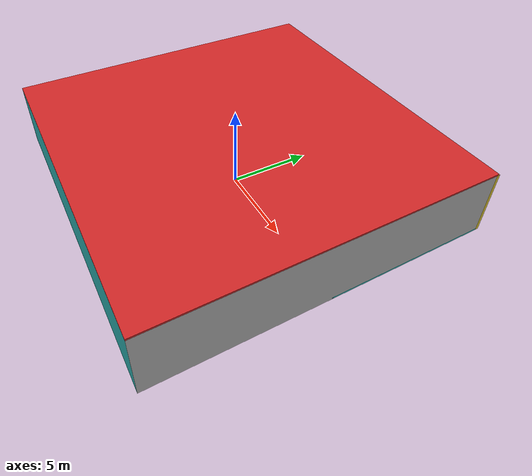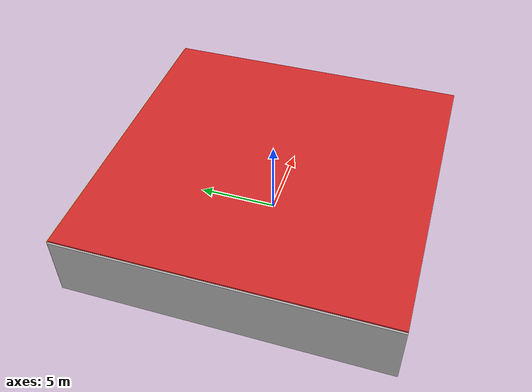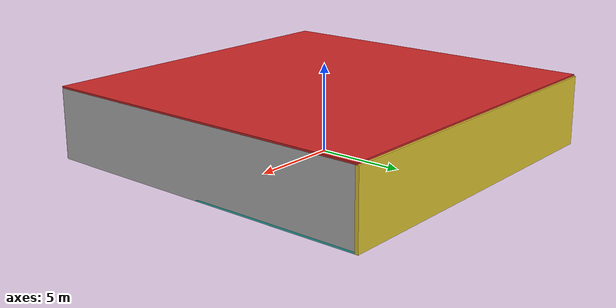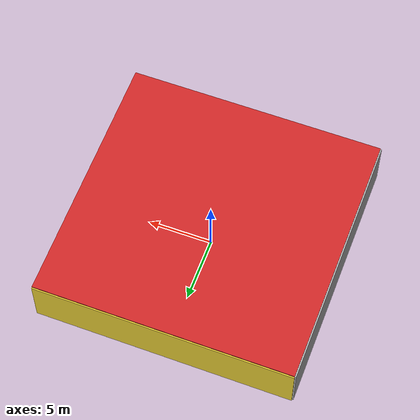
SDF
<sdf version="1.4">
 <world name="default">
  <physics type="ode">
   <max_step_size>0.001</max_step_size>
   <real_time_factor>1</real_time_factor>
   <real_time_update_rate>1000</real_time_update_rate>
   <gravity>0 0 -9.8</gravity>
  </physics>
  <scene><ambient>0.4 0.4 0.4 1</ambient><background>0.7 0.7 0.7 1</background><shadows>1</shadows></scene>
  <model name="Surrounding">
   <static>1</static>
   <link name="Ceiling">
    <collision name="Ceiling_Collision"><geometry><box><size>20 20 0.1</size></box></geometry></collision>
    <visual name="Ceiling_Visual">
     <geometry><box><size>20 20 0.1</size></box></geometry>
     <material>
      <script><uri>file://media/materials/scripts/gazebo.material</uri><name>Gazebo/RedBright</name></script>
     </material>
    </visual>
    <pose>0 0 4.05 0 0 0</pose>
   </link>
   <link name="Wall_South">
    <collision name="Wall_South_Collision">
     <geometry><box><size>20 0 4</size></box></geometry>
     <pose>0 0 2 0 -0 0</pose>
    </collision>
    <visual name="Wall_South_Visual">
     <pose>0 0 2 0 -0 0</pose>
     <geometry><box><size>20 0 4</size></box></geometry>
     <material>
      <script><uri>file://media/materials/scripts/gazebo.material</uri><name>Gazebo/Turquoise</name></script>
     </material>
    </visual>
    <velocity_decay><linear>0</linear><angular>0</angular></velocity_decay>
    <pose>0 -10 0 0 -0 0</pose>
   </link>
   <link name="Wall_East">
    <collision name="Wall_21_Collision">
     <geometry><box><size>20 0 4</size></box></geometry>
     <pose>0 0 2 0 -0 0</pose>
    </collision>
    <visual name="Wall_21_Visual">
     <pose>0 0 2 0 -0 0</pose>
     <geometry><box><size>20 0 4</size></box></geometry>
     <material>
      <script><uri>file://media/materials/scripts/gazebo.material</uri><name>Gazebo/JointAnchor</name></script>
     </material>
    </visual>
    <velocity_decay><linear>0</linear><angular>0</angular></velocity_decay>
    <pose>10 0 0 0 -0 1.5708</pose>
   </link>
   <link name="Wall_North">
    <collision name="Wall_22_Collision">
     <geometry><box><size>20 0.2 4</size></box></geometry>
     <pose>0 0 2 0 -0 0</pose>
    </collision>
    <visual name="Wall_22_Visual">
     <pose>0 0 2 0 -0 0</pose>
     <geometry><box><size>20 0.2 4</size></box></geometry>
     <material>
      <script><uri>file://media/materials/scripts/gazebo.material</uri><name>Gazebo/ZincYellow</name></script>
     </material>
    </visual>
    <velocity_decay><linear>0</linear><angular>0</angular></velocity_decay>
    <pose>0 10 0 0 -0 0</pose>
   </link>
   <link name="Wall_West">
    <collision name="Wall_23_Collision">
     <geometry><box><size>20 0.2 4</size></box></geometry>
     <pose>0 0 2 0 -0 0</pose>
    </collision>
    <visual name="Wall_23_Visual">
     <pose>0 0 2 0 -0 0</pose>
     <geometry><box><size>20 0.2 4</size></box></geometry>
     <material>
      <script><uri>file://media/materials/scripts/gazebo.material</uri><name>Gazebo/Pioneer2Body</name></script>
     </material>
    </visual>
    <velocity_decay><linear>0</linear><angular>0</angular></velocity_decay>
    <pose>-10 0 0 0 0 -1.5708</pose>
   </link>
   <link name="Ground_link">
    <collision name="collision">
     <pose>0 0 .05 0 -0 0</pose>
     <geometry><box><size>20 20 0.1</size></box></geometry>
    </collision>
    <visual name="visual">
     <pose>0 0 .05 0 -0 0</pose>
     <geometry><box><size>20 20 0.1</size></box></geometry>
     <material>
      <script><uri>file://media/materials/scripts/gazebo.material</uri><name>Gazebo/TurquoiseGlow</name></script>
     </material>
    </visual>
   </link>
   <static>1</static>
  </model>
  <spherical_coordinates>
   <surface_model>EARTH_WGS84</surface_model>
   <latitude_deg>0</latitude_deg>
   <longitude_deg>0</longitude_deg>
   <elevation>0</elevation>
   <heading_deg>0</heading_deg>
  </spherical_coordinates>
  <light name="lightball_0" type="diffuse">
   <diffuse>0.8 0.8 0.8 1</diffuse>
   <specular>0.2 0.2 0.2 1</specular>
   <attenuation>
    <range>100</range>
    <constant>0.7</constant>
    <linear>0.01</linear>
    <quadratic>0.001</quadratic>
   </attenuation>
   <direction>-0.5 0.1 -0.9</direction>
   <pose>5.33478001229 6.46287215513 1.97583018651 0 0 0</pose>
  </light>
  <light name="lightball_1" type="diffuse">
   <diffuse>0.8 0.8 0.8 1</diffuse>
   <specular>0.2 0.2 0.2 1</specular>
   <attenuation>
    <range>100</range>
    <constant>0.7</constant>
    <linear>0.01</linear>
    <quadratic>0.001</quadratic>
   </attenuation>
   <direction>-0.5 0.1 -0.9</direction>
   <pose>7.08256692113 -4.99407239566 2.67227144809 0 0 0</pose>
  </light>
  <light name="lightball_2" type="diffuse">
   <diffuse>0.8 0.8 0.8 1</diffuse>
   <specular>0.2 0.2 0.2 1</specular>
   <attenuation>
    <range>100</range>
    <constant>0.7</constant>
    <linear>0.01</linear>
    <quadratic>0.001</quadratic>
   </attenuation>
   <direction>-0.5 0.1 -0.9</direction>
   <pose>6.22034912933 8.05854346493 2.00059034484 0 0 0</pose>
  </light>
  <light name="lightball_3" type="diffuse">
   <diffuse>0.8 0.8 0.8 1</diffuse>
   <specular>0.2 0.2 0.2 1</specular>
   <attenuation>
    <range>100</range>
    <constant>0.7</constant>
    <linear>0.01</linear>
    <quadratic>0.001</quadratic>
   </attenuation>
   <direction>-0.5 0.1 -0.9</direction>
   <pose>-4.38909902539 -2.53849168637 1.54684555905 0 0 0</pose>
  </light>
  <light name="lightball_4" type="diffuse">
   <diffuse>0.8 0.8 0.8 1</diffuse>
   <specular>0.2 0.2 0.2 1</specular>
   <attenuation>
    <range>100</range>
    <constant>0.7</constant>
    <linear>0.01</linear>
    <quadratic>0.001</quadratic>
   </attenuation>
   <direction>-0.5 0.1 -0.9</direction>
   <pose>-7.86843284319 -1.54944655546 1.99610054992 0 0 0</pose>
  </light>
  <light name="lightball_5" type="diffuse">
   <diffuse>0.8 0.8 0.8 1</diffuse>
   <specular>0.2 0.2 0.2 1</specular>
   <attenuation>
    <range>100</range>
    <constant>0.7</constant>
    <linear>0.01</linear>
    <quadratic>0.001</quadratic>
   </attenuation>
   <direction>-0.5 0.1 -0.9</direction>
   <pose>2.16191132373 9.59352670003 3.82253491744 0 0 0</pose>
  </light>
  <light name="lightball_6" type="diffuse">
   <diffuse>0.8 0.8 0.8 1</diffuse>
   <specular>0.2 0.2 0.2 1</specular>
   <attenuation>
    <range>100</range>
    <constant>0.7</constant>
    <linear>0.01</linear>
    <quadratic>0.001</quadratic>
   </attenuation>
   <direction>-0.5 0.1 -0.9</direction>
   <pose>9.83831087302 -1.38838745023 3.78145272223 0 0 0</pose>
  </light>
  <light name="lightball_7" type="diffuse">
   <diffuse>0.8 0.8 0.8 1</diffuse>
   <specular>0.2 0.2 0.2 1</specular>
   <attenuation>
    <range>100</range>
    <constant>0.7</constant>
    <linear>0.01</linear>
    <quadratic>0.001</quadratic>
   </attenuation>
   <direction>-0.5 0.1 -0.9</direction>
   <pose>-3.96678845558 4.64931506991 3.26438417226 0 0 0</pose>
  </light>
  <light name="lightball_8" type="diffuse">
   <diffuse>0.8 0.8 0.8 1</diffuse>
   <specular>0.2 0.2 0.2 1</specular>
   <attenuation>
    <range>100</range>
    <constant>0.7</constant>
    <linear>0.01</linear>
    <quadratic>0.001</quadratic>
   </attenuation>
   <direction>-0.5 0.1 -0.9</direction>
   <pose>-2.00269406752 1.72256141737 1.60663149298 0 0 0</pose>
  </light>
  <light name="lightball_9" type="diffuse">
   <diffuse>0.8 0.8 0.8 1</diffuse>
   <specular>0.2 0.2 0.2 1</specular>
   <attenuation>
    <range>100</range>
    <constant>0.7</constant>
    <linear>0.01</linear>
    <quadratic>0.001</quadratic>
   </attenuation>
   <direction>-0.5 0.1 -0.9</direction>
   <pose>-3.57774442909 8.33054047607 2.28755910584 0 0 0</pose>
  </light>
  <light name="lightball_10" type="diffuse">
   <diffuse>0.8 0.8 0.8 1</diffuse>
   <specular>0.2 0.2 0.2 1</specular>
   <attenuation>
    <range>100</range>
    <constant>0.7</constant>
    <linear>0.01</linear>
    <quadratic>0.001</quadratic>
   </attenuation>
   <direction>-0.5 0.1 -0.9</direction>
   <pose>8.68375004045 1.87404030284 2.83312626598 0 0 0</pose>
  </light>
  <include>
   <uri>model://textured_shapes</uri>
   <pose>-4.74225322565 -5.44968891237 0 0 0 1.94918022508</pose>
  </include>
  <include>
   <uri>model://textured_shapes</uri>
   <pose>-4.45623197016 7.1201486024 0 0 0 2.64342100339</pose>
  </include>
  <include>
   <uri>model://textured_shapes</uri>
   <pose>-1.04587593391 -7.88725308322 0 0 0 2.61228752589</pose>
  </include>
  <include>
   <uri>model://construction_cone</uri>
   <pose>3.52840566999 7.57612691756 0 0 0 3.12831088154</pose>
  </include>
 </world>
</sdf>

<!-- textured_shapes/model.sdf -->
<sdf version="1.6">
  <model name="textured_shapes">
    <pose>0 0 0.5 0 0 0</pose>
    <link name="box">
      <pose>0 -1.5 0 0 0 0</pose>
      <collision name="collision">
        <geometry>
          <box>
            <size>1 1 1</size>
          </box>
        </geometry>
      </collision>
      <visual name="visual">
        <geometry>
          <box>
            <size>1 1 1</size>
          </box>
        </geometry>
        <material>
          <script>
            <uri>model://../model_source/models/textured_shapes/materials/scripts</uri>
            <uri>model://../model_source/models/textured_shapes/materials/textures</uri>
            <name>TexturedShape/Squares</name>
          </script>
        </material>
      </visual>
    </link>
    <link name="sphere">
      <collision name="collision">
        <geometry>
          <sphere>
            <radius>0.5</radius>
          </sphere>
        </geometry>
      </collision>
      <visual name="visual">
        <geometry>
          <sphere>
            <radius>0.5</radius>
          </sphere>
        </geometry>
        <material>
          <script>
            <uri>model://../model_source/models/textured_shapes/materials/scripts</uri>
            <uri>model://../model_source/models/textured_shapes/materials/textures</uri>
            <name>TexturedShape/Squares</name>
          </script>
        </material>
      </visual>
    </link>
    <link name="cylinder">
      <pose>0 1.5 0 0 0 0</pose>
      <collision name="collision">
        <geometry>
          <cylinder>
            <radius>0.5</radius>
            <length>1</length>
          </cylinder>
        </geometry>
      </collision>
      <visual name="visual">
        <geometry>
          <cylinder>
            <radius>0.5</radius>
            <length>1</length>
          </cylinder>
        </geometry>
        <material>
          <script>
            <uri>model://../model_source/models/textured_shapes/materials/scripts</uri>
            <uri>model://../model_source/models/textured_shapes/materials/textures</uri>
            <name>TexturedShape/Squares</name>
          </script>
        </material>
      </visual>
    </link>
  </model>
</sdf>

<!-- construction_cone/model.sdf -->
<sdf version="1.5">
  <model name="Construction Cone">
    <link name="link">
      <collision name="collision">
        <geometry>
          <mesh>
            <scale>10 10 10</scale>
            <uri>file://isr-testbed/construction_cone/meshes/construction_cone.dae</uri>
          </mesh>
        </geometry>
      </collision>
      <visual name="visual">
        <geometry>
          <mesh>
            <scale>10 10 10</scale>
            <uri>file://isr-testbed/construction_cone/meshes/construction_cone.dae</uri>
          </mesh>
        </geometry>
      </visual>
    </link>
  </model>
</sdf>
